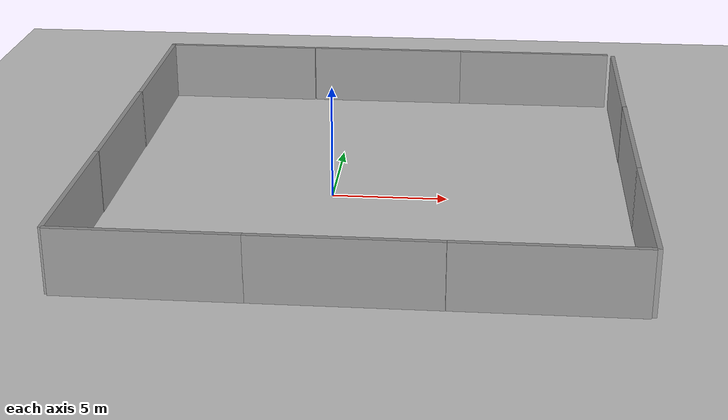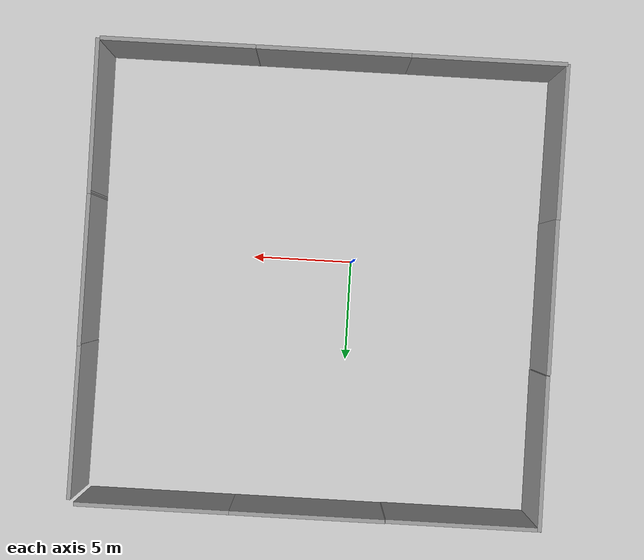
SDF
<sdf version="1.4">
 <world name="default">
  <light name="sun" type="directional">
   <pose>0 0 10 0 -0 0</pose>
   <diffuse>0.8 0.8 0.8 1</diffuse>
   <specular>0.2 0.2 0.2 1</specular>
   <attenuation>
    <range>1000</range>
    <constant>0.9</constant>
    <linear>0.01</linear>
    <quadratic>0.001</quadratic>
   </attenuation>
   <direction>-0.5 0.1 -0.9</direction>
  </light>
  <model name="ground_plane">
   <static>1</static>
   <link name="link">
    <collision name="collision">
     <geometry><plane><normal>0 0 1</normal><size>100 100</size></plane></geometry>
     <surface><friction><ode><mu>100</mu><mu2>50</mu2></ode></friction></surface>
    </collision>
    <visual name="visual">
     <cast_shadows>0</cast_shadows>
     <geometry><plane><normal>0 0 1</normal><size>100 100</size></plane></geometry>
     <material>
      <script><uri>file://media/materials/scripts/gazebo.material</uri><name>Gazebo/Grey</name></script>
     </material>
    </visual>
    <velocity_decay><linear>0</linear><angular>0</angular></velocity_decay>
   </link>
  </model>
  <physics type="ode">
   <max_step_size>0.001</max_step_size>
   <real_time_factor>1</real_time_factor>
   <real_time_update_rate>1000</real_time_update_rate>
   <gravity>0 0 -9.8</gravity>
  </physics>
  <scene>
   <sky><clouds><speed>12</speed></clouds></sky>
   <ambient>0.4 0.4 0.4 1</ambient>
   <background>0.7 0.7 0.7 1</background>
   <shadows>1</shadows>
  </scene>
  <spherical_coordinates>
   <surface_model>EARTH_WGS84</surface_model>
   <latitude_deg>0</latitude_deg>
   <longitude_deg>0</longitude_deg>
   <elevation>0</elevation>
   <heading_deg>0</heading_deg>
  </spherical_coordinates>
  <model name="grey_wall">
   <static>1</static>
   <link name="link">
    <pose>0 0 1.4 0 -0 0</pose>
    <collision name="collision"><geometry><box><size>7.5 0.2 2.8</size></box></geometry></collision>
    <visual name="visual">
     <cast_shadows>0</cast_shadows>
     <geometry><box><size>7.5 0.2 2.8</size></box></geometry>
     <material>
      <script>
       <uri>model://grey_wall/materials/scripts</uri>
       <uri>model://grey_wall/materials/textures</uri>
       <name>vrc/grey_wall</name>
      </script>
     </material>
    </visual>
    <velocity_decay><linear>0</linear><angular>0</angular></velocity_decay>
   </link>
   <pose>-6 -10 0 0 -0 0</pose>
  </model>
  <model name="grey_wall_0">
   <static>1</static>
   <link name="link">
    <pose>0 0 1.4 0 -0 0</pose>
    <collision name="collision"><geometry><box><size>7.5 0.2 2.8</size></box></geometry></collision>
    <visual name="visual">
     <cast_shadows>0</cast_shadows>
     <geometry><box><size>7.5 0.2 2.8</size></box></geometry>
     <material>
      <script>
       <uri>model://grey_wall/materials/scripts</uri>
       <uri>model://grey_wall/materials/textures</uri>
       <name>vrc/grey_wall</name>
      </script>
     </material>
    </visual>
    <velocity_decay><linear>0</linear><angular>0</angular></velocity_decay>
   </link>
   <pose>1.48405 -10 0 0 -0 0</pose>
  </model>
  <model name="grey_wall_1">
   <static>1</static>
   <link name="link">
    <pose>0 0 1.4 0 -0 0</pose>
    <collision name="collision"><geometry><box><size>7.5 0.2 2.8</size></box></geometry></collision>
    <visual name="visual">
     <cast_shadows>0</cast_shadows>
     <geometry><box><size>7.5 0.2 2.8</size></box></geometry>
     <material>
      <script>
       <uri>model://grey_wall/materials/scripts</uri>
       <uri>model://grey_wall/materials/textures</uri>
       <name>vrc/grey_wall</name>
      </script>
     </material>
    </visual>
    <velocity_decay><linear>0</linear><angular>0</angular></velocity_decay>
   </link>
   <pose>9 -10 0 0 -0 0</pose>
  </model>
  <model name="grey_wall_2">
   <static>1</static>
   <link name="link">
    <pose>0 0 1.4 0 -0 0</pose>
    <collision name="collision"><geometry><box><size>7.5 0.2 2.8</size></box></geometry></collision>
    <visual name="visual">
     <cast_shadows>0</cast_shadows>
     <geometry><box><size>7.5 0.2 2.8</size></box></geometry>
     <material>
      <script>
       <uri>model://grey_wall/materials/scripts</uri>
       <uri>model://grey_wall/materials/textures</uri>
       <name>vrc/grey_wall</name>
      </script>
     </material>
    </visual>
    <velocity_decay><linear>0</linear><angular>0</angular></velocity_decay>
   </link>
   <pose>-9.73639 -6.26448 0 0 -0 1.56213</pose>
  </model>
  <model name="grey_wall_3">
   <static>1</static>
   <link name="link">
    <pose>0 0 1.4 0 -0 0</pose>
    <collision name="collision"><geometry><box><size>7.5 0.2 2.8</size></box></geometry></collision>
    <visual name="visual">
     <cast_shadows>0</cast_shadows>
     <geometry><box><size>7.5 0.2 2.8</size></box></geometry>
     <material>
      <script>
       <uri>model://grey_wall/materials/scripts</uri>
       <uri>model://grey_wall/materials/textures</uri>
       <name>vrc/grey_wall</name>
      </script>
     </material>
    </visual>
    <velocity_decay><linear>0</linear><angular>0</angular></velocity_decay>
   </link>
   <pose>-9.67637 1.20955 0 0 -0 1.56906</pose>
  </model>
  <model name="grey_wall_4">
   <static>1</static>
   <link name="link">
    <pose>0 0 1.4 0 -0 0</pose>
    <collision name="collision"><geometry><box><size>7.5 0.2 2.8</size></box></geometry></collision>
    <visual name="visual">
     <cast_shadows>0</cast_shadows>
     <geometry><box><size>7.5 0.2 2.8</size></box></geometry>
     <material>
      <script>
       <uri>model://grey_wall/materials/scripts</uri>
       <uri>model://grey_wall/materials/textures</uri>
       <name>vrc/grey_wall</name>
      </script>
     </material>
    </visual>
    <velocity_decay><linear>0</linear><angular>0</angular></velocity_decay>
   </link>
   <pose>-9.651 8.7479 0 0 -0 1.57266</pose>
  </model>
  <model name="grey_wall_5">
   <static>1</static>
   <link name="link">
    <pose>0 0 1.4 0 -0 0</pose>
    <collision name="collision"><geometry><box><size>7.5 0.2 2.8</size></box></geometry></collision>
    <visual name="visual">
     <cast_shadows>0</cast_shadows>
     <geometry><box><size>7.5 0.2 2.8</size></box></geometry>
     <material>
      <script>
       <uri>model://grey_wall/materials/scripts</uri>
       <uri>model://grey_wall/materials/textures</uri>
       <name>vrc/grey_wall</name>
      </script>
     </material>
    </visual>
    <velocity_decay><linear>0</linear><angular>0</angular></velocity_decay>
   </link>
   <pose>-6 12.4042 0 0 -0 0</pose>
  </model>
  <model name="grey_wall_6">
   <static>1</static>
   <link name="link">
    <pose>0 0 1.4 0 -0 0</pose>
    <collision name="collision"><geometry><box><size>7.5 0.2 2.8</size></box></geometry></collision>
    <visual name="visual">
     <cast_shadows>0</cast_shadows>
     <geometry><box><size>7.5 0.2 2.8</size></box></geometry>
     <material>
      <script>
       <uri>model://grey_wall/materials/scripts</uri>
       <uri>model://grey_wall/materials/textures</uri>
       <name>vrc/grey_wall</name>
      </script>
     </material>
    </visual>
    <velocity_decay><linear>0</linear><angular>0</angular></velocity_decay>
   </link>
   <pose>1.5328 12.4222 0 0 -0 0</pose>
  </model>
  <model name="grey_wall_7">
   <static>1</static>
   <link name="link">
    <pose>0 0 1.4 0 -0 0</pose>
    <collision name="collision"><geometry><box><size>7.5 0.2 2.8</size></box></geometry></collision>
    <visual name="visual">
     <cast_shadows>0</cast_shadows>
     <geometry><box><size>7.5 0.2 2.8</size></box></geometry>
     <material>
      <script>
       <uri>model://grey_wall/materials/scripts</uri>
       <uri>model://grey_wall/materials/textures</uri>
       <name>vrc/grey_wall</name>
      </script>
     </material>
    </visual>
    <velocity_decay><linear>0</linear><angular>0</angular></velocity_decay>
   </link>
   <pose>9 12.4244 0 0 -0 0</pose>
  </model>
  <model name="grey_wall_8">
   <static>1</static>
   <link name="link">
    <pose>0 0 1.4 0 -0 0</pose>
    <collision name="collision"><geometry><box><size>7.5 0.2 2.8</size></box></geometry></collision>
    <visual name="visual">
     <cast_shadows>0</cast_shadows>
     <geometry><box><size>7.5 0.2 2.8</size></box></geometry>
     <material>
      <script>
       <uri>model://grey_wall/materials/scripts</uri>
       <uri>model://grey_wall/materials/textures</uri>
       <name>vrc/grey_wall</name>
      </script>
     </material>
    </visual>
    <velocity_decay><linear>0</linear><angular>0</angular></velocity_decay>
   </link>
   <pose>12.8514 -6.25079 0 0 -0 1.57063</pose>
  </model>
  <model name="grey_wall_9">
   <static>1</static>
   <link name="link">
    <pose>0 0 1.4 0 -0 0</pose>
    <collision name="collision"><geometry><box><size>7.5 0.2 2.8</size></box></geometry></collision>
    <visual name="visual">
     <cast_shadows>0</cast_shadows>
     <geometry><box><size>7.5 0.2 2.8</size></box></geometry>
     <material>
      <script>
       <uri>model://grey_wall/materials/scripts</uri>
       <uri>model://grey_wall/materials/textures</uri>
       <name>vrc/grey_wall</name>
      </script>
     </material>
    </visual>
    <velocity_decay><linear>0</linear><angular>0</angular></velocity_decay>
   </link>
   <pose>12.8841 1.08864 0 0 0 -1.57957</pose>
  </model>
  <model name="grey_wall_10">
   <static>1</static>
   <link name="link">
    <pose>0 0 1.4 0 -0 0</pose>
    <collision name="collision"><geometry><box><size>7.5 0.2 2.8</size></box></geometry></collision>
    <visual name="visual">
     <cast_shadows>0</cast_shadows>
     <geometry><box><size>7.5 0.2 2.8</size></box></geometry>
     <material>
      <script>
       <uri>model://grey_wall/materials/scripts</uri>
       <uri>model://grey_wall/materials/textures</uri>
       <name>vrc/grey_wall</name>
      </script>
     </material>
    </visual>
    <velocity_decay><linear>0</linear><angular>0</angular></velocity_decay>
   </link>
   <pose>12.9469 8.48267 0 0 0 -1.58374</pose>
  </model>
 </world>
</sdf>
